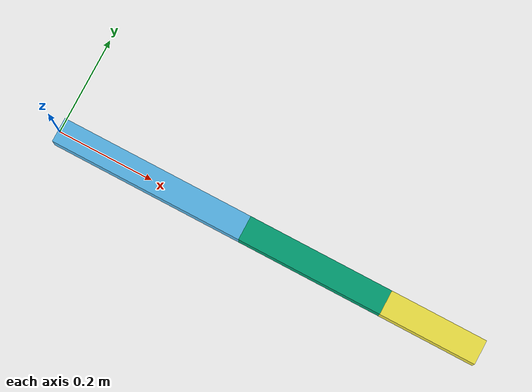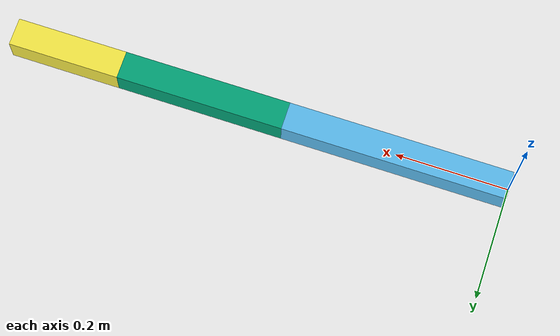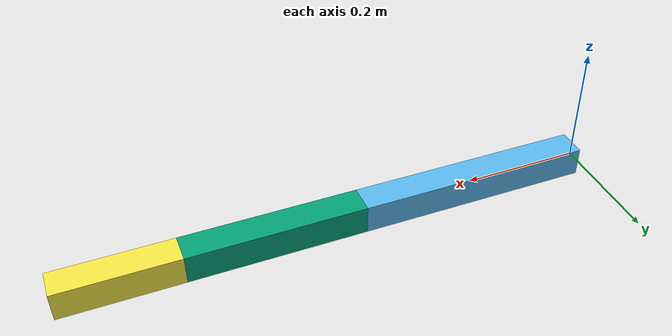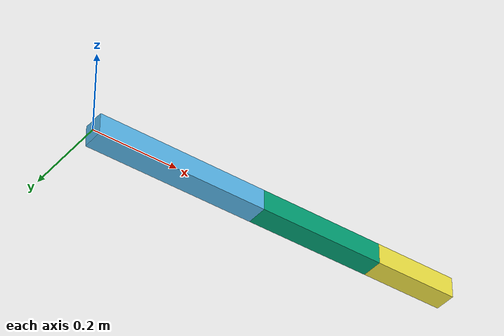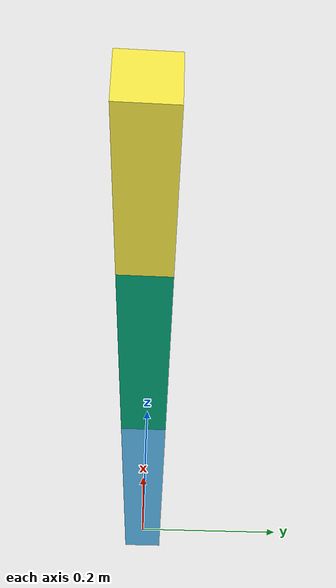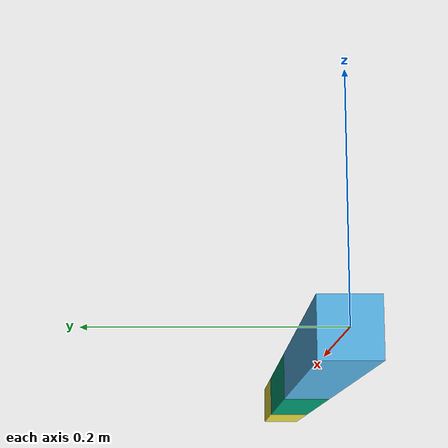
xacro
<?xml version="1.0"?>
<robot name="planar_arm" xmlns:xacro="http://www.ros.org/wiki/xacro">

  <!-- Link lengths -->
  <xacro:property name="L1" value="0.4"/>
  <xacro:property name="L2" value="0.3"/>
  <xacro:property name="L3" value="0.2"/>

  <!-- Base -->
  <link name="base_link"/>

  <!-- Link 1 -->
  <link name="link_1">
    <visual>
      <origin xyz="${L1/2} 0 0"/>
      <geometry>
        <box size="${L1} 0.05 0.05"/>
      </geometry>
    </visual>
  </link>

  <!-- Joint 1 -->
  <joint name="joint_1" type="revolute">
    <parent link="base_link"/>
    <child link="link_1"/>
    <origin xyz="0 0 0"/>
    <axis xyz="0 0 1"/>
    <limit lower="-3.14" upper="3.14" effort="1" velocity="1"/>
  </joint>

  <!-- Link 2 -->
  <link name="link_2">
    <visual>
      <origin xyz="${L2/2} 0 0"/>
      <geometry>
        <box size="${L2} 0.05 0.05"/>
      </geometry>
    </visual>
  </link>

  <!-- Joint 2 -->
  <joint name="joint_2" type="revolute">
    <parent link="link_1"/>
    <child link="link_2"/>
    <origin xyz="${L1} 0 0"/>
    <axis xyz="0 0 1"/>
    <limit lower="-3.14" upper="3.14" effort="1" velocity="1"/>
  </joint>

  <!-- Link 3 -->
  <link name="link_3">
    <visual>
      <origin xyz="${L3/2} 0 0"/>
      <geometry>
        <box size="${L3} 0.05 0.05"/>
      </geometry>
    </visual>
  </link>

  <!-- Joint 3 -->
  <joint name="joint_3" type="revolute">
    <parent link="link_2"/>
    <child link="link_3"/>
    <origin xyz="${L2} 0 0"/>
    <axis xyz="0 0 1"/>
    <limit lower="-3.14" upper="3.14" effort="1" velocity="1"/>
  </joint>

  <!-- End Effector -->
  <link name="end_effector"/>

  <joint name="ee_joint" type="fixed">
    <parent link="link_3"/>
    <child link="end_effector"/>
    <origin xyz="${L3} 0 0"/>
  </joint>

</robot>
